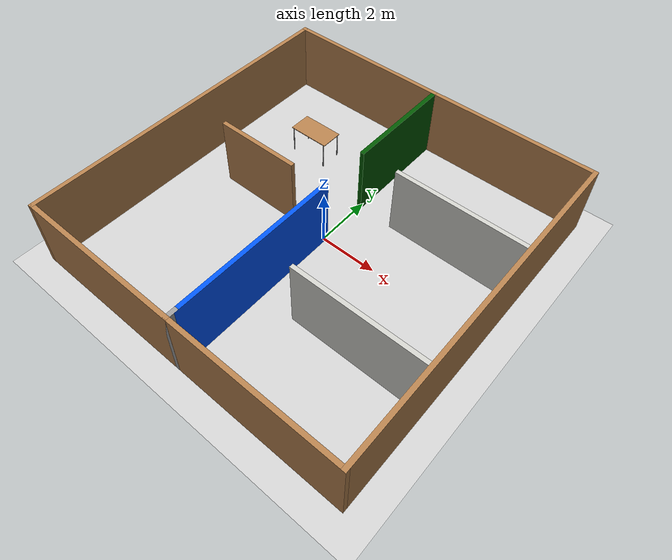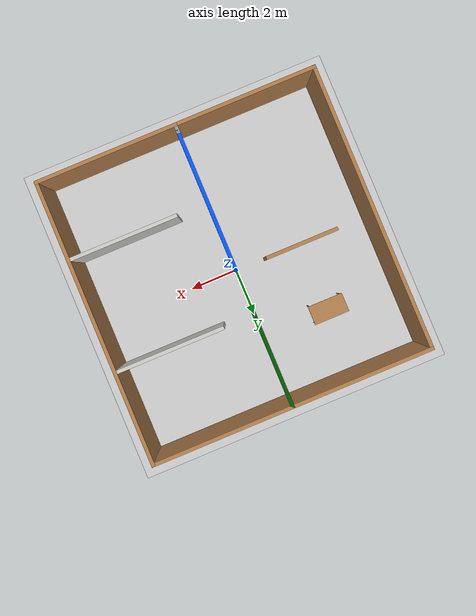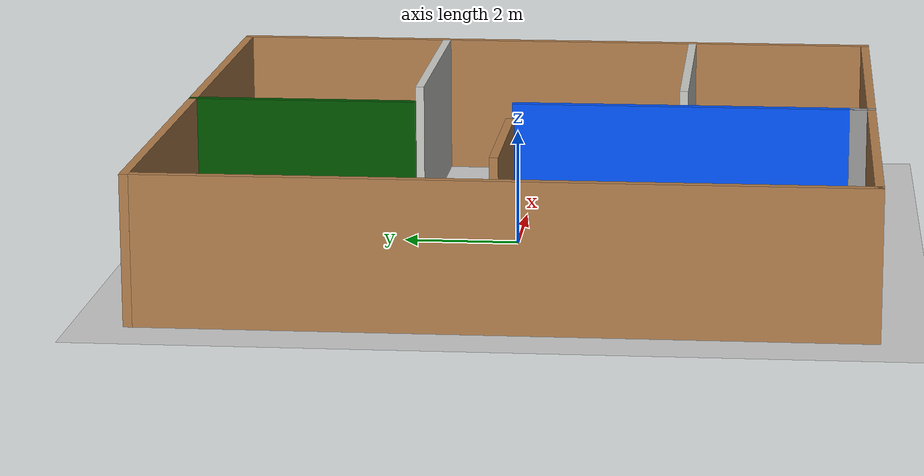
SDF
<sdf version="1.6">
 <world name="default">
  <light name="sun" type="directional">
   <pose>0 0 10 0 -0 0</pose>
   <diffuse>0.8 0.8 0.8 1</diffuse>
   <specular>0.2 0.2 0.2 1</specular>
   <attenuation>
    <range>1000</range>
    <constant>0.9</constant>
    <linear>0.01</linear>
    <quadratic>0.001</quadratic>
   </attenuation>
   <direction>-0.5 0.1 -0.9</direction>
  </light>
  <model name="ground_plane">
   <static>1</static>
   <link name="link">
    <collision name="collision">
     <geometry><plane><normal>0 0 1</normal><size>100 100</size></plane></geometry>
     <surface>
      <contact><collide_bitmask>65535</collide_bitmask></contact>
      <friction><ode><mu>100</mu><mu2>50</mu2></ode></friction>
     </surface>
    </collision>
    <visual name="visual">
     <cast_shadows>0</cast_shadows>
     <geometry><plane><normal>0 0 1</normal><size>100 100</size></plane></geometry>
     <material>
      <script><uri>file://media/materials/scripts/gazebo.material</uri><name>Gazebo/Grey</name></script>
     </material>
    </visual>
   </link>
  </model>
  <gravity>0 0 -9.8</gravity>
  <magnetic_field>6e-06 2.3e-05 -4.2e-05</magnetic_field>
  <atmosphere type="adiabatic"/>
  <physics name="default_physics" default="0" type="ode">
   <max_step_size>0.001</max_step_size>
   <real_time_factor>1</real_time_factor>
   <real_time_update_rate>1000</real_time_update_rate>
  </physics>
  <scene><ambient>0.4 0.4 0.4 1</ambient><background>0.7 0.7 0.7 1</background><shadows>1</shadows></scene>
  <spherical_coordinates>
   <surface_model>EARTH_WGS84</surface_model>
   <latitude_deg>0</latitude_deg>
   <longitude_deg>0</longitude_deg>
   <elevation>0</elevation>
   <heading_deg>0</heading_deg>
  </spherical_coordinates>
  <model name="HomeService">
   <pose>0.01 -0.205 0 0 -0 0</pose>
   <link name="Wall_0">
    <collision name="Wall_0_Collision">
     <geometry><box><size>6 0.15 2.5</size></box></geometry>
     <pose>0 0 1.25 0 -0 0</pose>
    </collision>
    <visual name="Wall_0_Visual">
     <pose>0 0 1.25 0 -0 0</pose>
     <geometry><box><size>6 0.15 2.5</size></box></geometry>
     <material>
      <script><uri>file://media/materials/scripts/gazebo.material</uri><name>Gazebo/Grey</name></script>
      <ambient>0 0.333333 1 1</ambient>
     </material>
     <meta><layer>0</layer></meta>
    </visual>
    <pose>0 -2.7 0 0 -0 1.5708</pose>
   </link>
   <link name="Wall_11">
    <collision name="Wall_11_Collision">
     <geometry><box><size>3 0.15 2.5</size></box></geometry>
     <pose>0 0 1.25 0 -0 0</pose>
    </collision>
    <visual name="Wall_11_Visual">
     <pose>0 0 1.25 0 -0 0</pose>
     <geometry><box><size>3 0.15 2.5</size></box></geometry>
     <material>
      <script><uri>file://media/materials/scripts/gazebo.material</uri><name>Gazebo/Wood</name></script>
      <ambient>1 1 1 1</ambient>
     </material>
     <meta><layer>0</layer></meta>
    </visual>
    <pose>-2.775 0.225 0 0 -0 3.14159</pose>
   </link>
   <link name="Wall_13">
    <collision name="Wall_13_Collision">
     <geometry><box><size>6 0.15 2.5</size></box></geometry>
     <pose>0 0 1.25 0 -0 0</pose>
    </collision>
    <visual name="Wall_13_Visual">
     <pose>0 0 1.25 0 -0 0</pose>
     <geometry><box><size>6 0.15 2.5</size></box></geometry>
     <material>
      <script><uri>file://media/materials/scripts/gazebo.material</uri><name>Gazebo/Wood</name></script>
      <ambient>1 1 1 1</ambient>
     </material>
     <meta><layer>0</layer></meta>
    </visual>
    <pose>2.925 5.925 0 0 -0 0</pose>
   </link>
   <link name="Wall_14">
    <collision name="Wall_14_Collision">
     <geometry><box><size>12 0.15 2.5</size></box></geometry>
     <pose>0 0 1.25 0 -0 0</pose>
    </collision>
    <visual name="Wall_14_Visual">
     <pose>0 0 1.25 0 -0 0</pose>
     <geometry><box><size>12 0.15 2.5</size></box></geometry>
     <material>
      <script><uri>file://media/materials/scripts/gazebo.material</uri><name>Gazebo/Wood</name></script>
      <ambient>1 1 1 1</ambient>
     </material>
     <meta><layer>0</layer></meta>
    </visual>
    <pose>5.85 0 0 0 0 -1.5708</pose>
   </link>
   <link name="Wall_15">
    <collision name="Wall_15_Collision">
     <geometry><box><size>6 0.15 2.5</size></box></geometry>
     <pose>0 0 1.25 0 -0 0</pose>
    </collision>
    <visual name="Wall_15_Visual">
     <pose>0 0 1.25 0 -0 0</pose>
     <geometry><box><size>6 0.15 2.5</size></box></geometry>
     <material>
      <script><uri>file://media/materials/scripts/gazebo.material</uri><name>Gazebo/Wood</name></script>
      <ambient>1 1 1 1</ambient>
     </material>
     <meta><layer>0</layer></meta>
    </visual>
    <pose>2.925 -5.925 0 0 -0 3.14159</pose>
   </link>
   <link name="Wall_18">
    <collision name="Wall_18_Collision">
     <geometry><box><size>4.5 0.15 2.5</size></box></geometry>
     <pose>0 0 1.25 0 -0 0</pose>
    </collision>
    <visual name="Wall_18_Visual">
     <pose>0 0 1.25 0 -0 0</pose>
     <geometry><box><size>4.5 0.15 2.5</size></box></geometry>
     <material>
      <script><uri>file://media/materials/scripts/gazebo.material</uri><name>Gazebo/CeilingTiled</name></script>
      <ambient>1 1 1 1</ambient>
     </material>
     <meta><layer>0</layer></meta>
    </visual>
    <pose>3.52649 -2.64498 0 0 -0 0</pose>
   </link>
   <link name="Wall_21">
    <collision name="Wall_21_Collision">
     <geometry><box><size>4.5 0.15 2.5</size></box></geometry>
     <pose>0 0 1.25 0 -0 0</pose>
    </collision>
    <visual name="Wall_21_Visual">
     <pose>0 0 1.25 0 -0 0</pose>
     <geometry><box><size>4.5 0.15 2.5</size></box></geometry>
     <material>
      <script><uri>file://media/materials/scripts/gazebo.material</uri><name>Gazebo/CeilingTiled</name></script>
      <ambient>1 1 1 1</ambient>
     </material>
     <meta><layer>0</layer></meta>
    </visual>
    <pose>3.525 2.075 0 0 -0 0</pose>
   </link>
   <link name="Wall_4">
    <collision name="Wall_4_Collision">
     <geometry><box><size>4 0.15 2.5</size></box></geometry>
     <pose>0 0 1.25 0 -0 0</pose>
    </collision>
    <visual name="Wall_4_Visual">
     <pose>0 0 1.25 0 -0 0</pose>
     <geometry><box><size>4 0.15 2.5</size></box></geometry>
     <material>
      <script><uri>file://media/materials/scripts/gazebo.material</uri><name>Gazebo/Grey</name></script>
      <ambient>0 0.333333 0 1</ambient>
     </material>
     <meta><layer>0</layer></meta>
    </visual>
    <pose>0 4 0 0 -0 1.5708</pose>
   </link>
   <link name="Wall_5">
    <collision name="Wall_5_Collision">
     <geometry><box><size>6 0.15 2.5</size></box></geometry>
     <pose>0 0 1.25 0 -0 0</pose>
    </collision>
    <visual name="Wall_5_Visual">
     <pose>0 0 1.25 0 -0 0</pose>
     <geometry><box><size>6 0.15 2.5</size></box></geometry>
     <material>
      <script><uri>file://media/materials/scripts/gazebo.material</uri><name>Gazebo/Wood</name></script>
      <ambient>1 1 1 1</ambient>
     </material>
     <meta><layer>0</layer></meta>
    </visual>
    <pose>-2.925 5.925 0 0 -0 3.14159</pose>
   </link>
   <link name="Wall_6">
    <collision name="Wall_6_Collision">
     <geometry><box><size>12 0.15 2.5</size></box></geometry>
     <pose>0 0 1.25 0 -0 0</pose>
    </collision>
    <visual name="Wall_6_Visual">
     <pose>0 0 1.25 0 -0 0</pose>
     <geometry><box><size>12 0.15 2.5</size></box></geometry>
     <material>
      <script><uri>file://media/materials/scripts/gazebo.material</uri><name>Gazebo/Wood</name></script>
      <ambient>1 1 1 1</ambient>
     </material>
     <meta><layer>0</layer></meta>
    </visual>
    <pose>-5.85 0 0 0 0 -1.5708</pose>
   </link>
   <link name="Wall_7">
    <collision name="Wall_7_Collision">
     <geometry><box><size>6 0.15 2.5</size></box></geometry>
     <pose>0 0 1.25 0 -0 0</pose>
    </collision>
    <visual name="Wall_7_Visual">
     <pose>0 0 1.25 0 -0 0</pose>
     <geometry><box><size>6 0.15 2.5</size></box></geometry>
     <material>
      <script><uri>file://media/materials/scripts/gazebo.material</uri><name>Gazebo/Wood</name></script>
      <ambient>1 1 1 1</ambient>
     </material>
     <meta><layer>0</layer></meta>
    </visual>
    <pose>-2.925 -5.925 0 0 -0 0</pose>
   </link>
   <link name="Wall_8">
    <collision name="Wall_8_Collision">
     <geometry><box><size>0.45 0.15 2.5</size></box></geometry>
     <pose>0 0 1.25 0 -0 0</pose>
    </collision>
    <visual name="Wall_8_Visual">
     <pose>0 0 1.25 0 -0 0</pose>
     <geometry><box><size>0.45 0.15 2.5</size></box></geometry>
     <material>
      <script><uri>file://media/materials/scripts/gazebo.material</uri><name>Gazebo/Grey</name></script>
      <ambient>1 1 1 1</ambient>
     </material>
     <meta><layer>0</layer></meta>
    </visual>
    <pose>0 -5.775 0 0 -0 1.5708</pose>
   </link>
   <static>1</static>
  </model>
  <model name="table">
   <static>1</static>
   <link name="link">
    <collision name="surface">
     <pose>0 0 1 0 -0 0</pose>
     <geometry><box><size>1.5 0.8 0.03</size></box></geometry>
     <surface><friction><ode><mu>0.6</mu><mu2>0.6</mu2></ode></friction></surface>
    </collision>
    <visual name="visual1">
     <pose>0 0 1 0 -0 0</pose>
     <geometry><box><size>1.5 0.8 0.03</size></box></geometry>
     <material>
      <script><uri>file://media/materials/scripts/gazebo.material</uri><name>Gazebo/Wood</name></script>
     </material>
    </visual>
    <collision name="front_left_leg">
     <pose>0.68 0.38 0.5 0 -0 0</pose>
     <geometry><cylinder><radius>0.02</radius><length>1</length></cylinder></geometry>
    </collision>
    <visual name="front_left_leg">
     <pose>0.68 0.38 0.5 0 -0 0</pose>
     <geometry><cylinder><radius>0.02</radius><length>1</length></cylinder></geometry>
     <material>
      <script><uri>file://media/materials/scripts/gazebo.material</uri><name>Gazebo/Grey</name></script>
     </material>
    </visual>
    <collision name="front_right_leg">
     <pose>0.68 -0.38 0.5 0 -0 0</pose>
     <geometry><cylinder><radius>0.02</radius><length>1</length></cylinder></geometry>
    </collision>
    <visual name="front_right_leg">
     <pose>0.68 -0.38 0.5 0 -0 0</pose>
     <geometry><cylinder><radius>0.02</radius><length>1</length></cylinder></geometry>
     <material>
      <script><uri>file://media/materials/scripts/gazebo.material</uri><name>Gazebo/Grey</name></script>
     </material>
    </visual>
    <collision name="back_right_leg">
     <pose>-0.68 -0.38 0.5 0 -0 0</pose>
     <geometry><cylinder><radius>0.02</radius><length>1</length></cylinder></geometry>
    </collision>
    <visual name="back_right_leg">
     <pose>-0.68 -0.38 0.5 0 -0 0</pose>
     <geometry><cylinder><radius>0.02</radius><length>1</length></cylinder></geometry>
     <material>
      <script><uri>file://media/materials/scripts/gazebo.material</uri><name>Gazebo/Grey</name></script>
     </material>
    </visual>
    <collision name="back_left_leg">
     <pose>-0.68 0.38 0.5 0 -0 0</pose>
     <geometry><cylinder><radius>0.02</radius><length>1</length></cylinder></geometry>
    </collision>
    <visual name="back_left_leg">
     <pose>-0.68 0.38 0.5 0 -0 0</pose>
     <geometry><cylinder><radius>0.02</radius><length>1</length></cylinder></geometry>
     <material>
      <script><uri>file://media/materials/scripts/gazebo.material</uri><name>Gazebo/Grey</name></script>
     </material>
    </visual>
   </link>
   <pose>-2.88096 2.91328 0 0 -0 0</pose>
  </model>
 </world>
</sdf>
